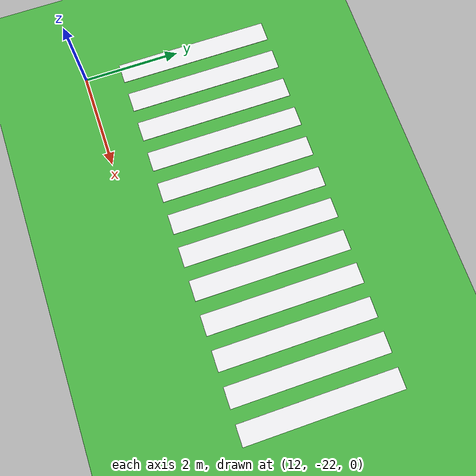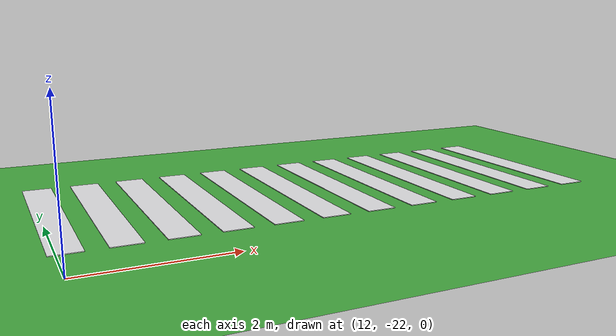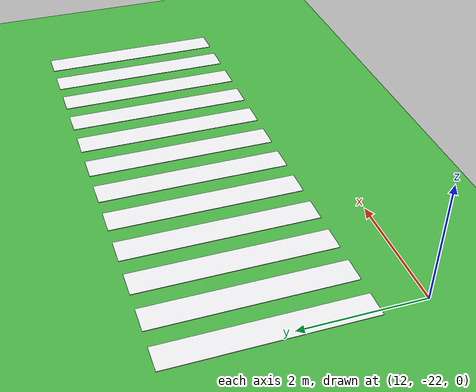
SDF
<sdf version="1.10">
 <world name="city_second">
  <model name="ground_plane">
   <static>true</static>
   <link name="link">
    <collision name="collision">
     <geometry><plane><normal>0 0 1</normal><size>45 46</size></plane></geometry>
    </collision>
    <visual name="visual">
     <geometry><plane><normal>0 0 1</normal><size>45 46</size></plane></geometry>
     <material>
      <ambient>0.280000001 0.689999998 0.25999999 1</ambient>
      <diffuse>0.280000001 0.689999998 0.25999999 1</diffuse>
      <specular>0.0299999993 0.0299999993 0.0299999993 1</specular>
     </material>
    </visual>
    <inertial>
     <mass>1</mass>
     <inertia><ixx>1</ixx><ixy>0</ixy><ixz>0</ixz><iyy>1</iyy><iyz>0</iyz><izz>1</izz></inertia>
    </inertial>
   </link>
   <pose>15.5 -11 0 0 0 0</pose>
  </model>
  <model name="crosswalk_h_1_1_south_7_2">
   <static>true</static>
   <pose>15.9618 -19.652999999999999 0.017000000000000001 0 0 0</pose>
   <link name="stripe_1">
    <collision name="collision">
     <geometry><box><size>0.41999999999999998 3.2000000000000002 0.01</size></box></geometry>
    </collision>
    <visual name="visual">
     <geometry><box><size>0.41999999999999998 3.2000000000000002 0.01</size></box></geometry>
     <material>
      <ambient>0.920000017 0.920000017 0.930000007 1</ambient>
      <diffuse>0.920000017 0.920000017 0.930000007 1</diffuse>
      <specular>0.0299999993 0.0299999993 0.0299999993 1</specular>
     </material>
    </visual>
    <pose>-3.8500000000000001 0 0 0 0 0</pose>
    <inertial>
     <mass>1</mass>
     <inertia><ixx>1</ixx><ixy>0</ixy><ixz>0</ixz><iyy>1</iyy><iyz>0</iyz><izz>1</izz></inertia>
    </inertial>
   </link>
   <link name="stripe_2">
    <collision name="collision">
     <geometry><box><size>0.41999999999999998 3.2000000000000002 0.01</size></box></geometry>
    </collision>
    <visual name="visual">
     <geometry><box><size>0.41999999999999998 3.2000000000000002 0.01</size></box></geometry>
     <material>
      <ambient>0.920000017 0.920000017 0.930000007 1</ambient>
      <diffuse>0.920000017 0.920000017 0.930000007 1</diffuse>
      <specular>0.0299999993 0.0299999993 0.0299999993 1</specular>
     </material>
    </visual>
    <pose>-3.1500000000000004 0 0 0 0 0</pose>
    <inertial>
     <mass>1</mass>
     <inertia><ixx>1</ixx><ixy>0</ixy><ixz>0</ixz><iyy>1</iyy><iyz>0</iyz><izz>1</izz></inertia>
    </inertial>
   </link>
   <link name="stripe_3">
    <collision name="collision">
     <geometry><box><size>0.41999999999999998 3.2000000000000002 0.01</size></box></geometry>
    </collision>
    <visual name="visual">
     <geometry><box><size>0.41999999999999998 3.2000000000000002 0.01</size></box></geometry>
     <material>
      <ambient>0.920000017 0.920000017 0.930000007 1</ambient>
      <diffuse>0.920000017 0.920000017 0.930000007 1</diffuse>
      <specular>0.0299999993 0.0299999993 0.0299999993 1</specular>
     </material>
    </visual>
    <pose>-2.4499999999999993 0 0 0 0 0</pose>
    <inertial>
     <mass>1</mass>
     <inertia><ixx>1</ixx><ixy>0</ixy><ixz>0</ixz><iyy>1</iyy><iyz>0</iyz><izz>1</izz></inertia>
    </inertial>
   </link>
   <link name="stripe_4">
    <collision name="collision">
     <geometry><box><size>0.41999999999999998 3.2000000000000002 0.01</size></box></geometry>
    </collision>
    <visual name="visual">
     <geometry><box><size>0.41999999999999998 3.2000000000000002 0.01</size></box></geometry>
     <material>
      <ambient>0.920000017 0.920000017 0.930000007 1</ambient>
      <diffuse>0.920000017 0.920000017 0.930000007 1</diffuse>
      <specular>0.0299999993 0.0299999993 0.0299999993 1</specular>
     </material>
    </visual>
    <pose>-1.75 0 0 0 0 0</pose>
    <inertial>
     <mass>1</mass>
     <inertia><ixx>1</ixx><ixy>0</ixy><ixz>0</ixz><iyy>1</iyy><iyz>0</iyz><izz>1</izz></inertia>
    </inertial>
   </link>
   <link name="stripe_5">
    <collision name="collision">
     <geometry><box><size>0.41999999999999998 3.2000000000000002 0.01</size></box></geometry>
    </collision>
    <visual name="visual">
     <geometry><box><size>0.41999999999999998 3.2000000000000002 0.01</size></box></geometry>
     <material>
      <ambient>0.920000017 0.920000017 0.930000007 1</ambient>
      <diffuse>0.920000017 0.920000017 0.930000007 1</diffuse>
      <specular>0.0299999993 0.0299999993 0.0299999993 1</specular>
     </material>
    </visual>
    <pose>-1.0500000000000007 0 0 0 0 0</pose>
    <inertial>
     <mass>1</mass>
     <inertia><ixx>1</ixx><ixy>0</ixy><ixz>0</ixz><iyy>1</iyy><iyz>0</iyz><izz>1</izz></inertia>
    </inertial>
   </link>
   <link name="stripe_6">
    <collision name="collision">
     <geometry><box><size>0.41999999999999998 3.2000000000000002 0.01</size></box></geometry>
    </collision>
    <visual name="visual">
     <geometry><box><size>0.41999999999999998 3.2000000000000002 0.01</size></box></geometry>
     <material>
      <ambient>0.920000017 0.920000017 0.930000007 1</ambient>
      <diffuse>0.920000017 0.920000017 0.930000007 1</diffuse>
      <specular>0.0299999993 0.0299999993 0.0299999993 1</specular>
     </material>
    </visual>
    <pose>-0.34999999999999964 0 0 0 0 0</pose>
    <inertial>
     <mass>1</mass>
     <inertia><ixx>1</ixx><ixy>0</ixy><ixz>0</ixz><iyy>1</iyy><iyz>0</iyz><izz>1</izz></inertia>
    </inertial>
   </link>
   <link name="stripe_7">
    <collision name="collision">
     <geometry><box><size>0.41999999999999998 3.2000000000000002 0.01</size></box></geometry>
    </collision>
    <visual name="visual">
     <geometry><box><size>0.41999999999999998 3.2000000000000002 0.01</size></box></geometry>
     <material>
      <ambient>0.920000017 0.920000017 0.930000007 1</ambient>
      <diffuse>0.920000017 0.920000017 0.930000007 1</diffuse>
      <specular>0.0299999993 0.0299999993 0.0299999993 1</specular>
     </material>
    </visual>
    <pose>0.35000000000000142 0 0 0 0 0</pose>
    <inertial>
     <mass>1</mass>
     <inertia><ixx>1</ixx><ixy>0</ixy><ixz>0</ixz><iyy>1</iyy><iyz>0</iyz><izz>1</izz></inertia>
    </inertial>
   </link>
   <link name="stripe_8">
    <collision name="collision">
     <geometry><box><size>0.41999999999999998 3.2000000000000002 0.01</size></box></geometry>
    </collision>
    <visual name="visual">
     <geometry><box><size>0.41999999999999998 3.2000000000000002 0.01</size></box></geometry>
     <material>
      <ambient>0.920000017 0.920000017 0.930000007 1</ambient>
      <diffuse>0.920000017 0.920000017 0.930000007 1</diffuse>
      <specular>0.0299999993 0.0299999993 0.0299999993 1</specular>
     </material>
    </visual>
    <pose>1.0500000000000007 0 0 0 0 0</pose>
    <inertial>
     <mass>1</mass>
     <inertia><ixx>1</ixx><ixy>0</ixy><ixz>0</ixz><iyy>1</iyy><iyz>0</iyz><izz>1</izz></inertia>
    </inertial>
   </link>
   <link name="stripe_9">
    <collision name="collision">
     <geometry><box><size>0.41999999999999998 3.2000000000000002 0.01</size></box></geometry>
    </collision>
    <visual name="visual">
     <geometry><box><size>0.41999999999999998 3.2000000000000002 0.01</size></box></geometry>
     <material>
      <ambient>0.920000017 0.920000017 0.930000007 1</ambient>
      <diffuse>0.920000017 0.920000017 0.930000007 1</diffuse>
      <specular>0.0299999993 0.0299999993 0.0299999993 1</specular>
     </material>
    </visual>
    <pose>1.75 0 0 0 0 0</pose>
    <inertial>
     <mass>1</mass>
     <inertia><ixx>1</ixx><ixy>0</ixy><ixz>0</ixz><iyy>1</iyy><iyz>0</iyz><izz>1</izz></inertia>
    </inertial>
   </link>
   <link name="stripe_10">
    <collision name="collision">
     <geometry><box><size>0.41999999999999998 3.2000000000000002 0.01</size></box></geometry>
    </collision>
    <visual name="visual">
     <geometry><box><size>0.41999999999999998 3.2000000000000002 0.01</size></box></geometry>
     <material>
      <ambient>0.920000017 0.920000017 0.930000007 1</ambient>
      <diffuse>0.920000017 0.920000017 0.930000007 1</diffuse>
      <specular>0.0299999993 0.0299999993 0.0299999993 1</specular>
     </material>
    </visual>
    <pose>2.4499999999999993 0 0 0 0 0</pose>
    <inertial>
     <mass>1</mass>
     <inertia><ixx>1</ixx><ixy>0</ixy><ixz>0</ixz><iyy>1</iyy><iyz>0</iyz><izz>1</izz></inertia>
    </inertial>
   </link>
   <link name="stripe_11">
    <collision name="collision">
     <geometry><box><size>0.41999999999999998 3.2000000000000002 0.01</size></box></geometry>
    </collision>
    <visual name="visual">
     <geometry><box><size>0.41999999999999998 3.2000000000000002 0.01</size></box></geometry>
     <material>
      <ambient>0.920000017 0.920000017 0.930000007 1</ambient>
      <diffuse>0.920000017 0.920000017 0.930000007 1</diffuse>
      <specular>0.0299999993 0.0299999993 0.0299999993 1</specular>
     </material>
    </visual>
    <pose>3.1499999999999986 0 0 0 0 0</pose>
    <inertial>
     <mass>1</mass>
     <inertia><ixx>1</ixx><ixy>0</ixy><ixz>0</ixz><iyy>1</iyy><iyz>0</iyz><izz>1</izz></inertia>
    </inertial>
   </link>
   <link name="stripe_12">
    <collision name="collision">
     <geometry><box><size>0.41999999999999998 3.2000000000000002 0.01</size></box></geometry>
    </collision>
    <visual name="visual">
     <geometry><box><size>0.41999999999999998 3.2000000000000002 0.01</size></box></geometry>
     <material>
      <ambient>0.920000017 0.920000017 0.930000007 1</ambient>
      <diffuse>0.920000017 0.920000017 0.930000007 1</diffuse>
      <specular>0.0299999993 0.0299999993 0.0299999993 1</specular>
     </material>
    </visual>
    <pose>3.8500000000000014 0 0 0 0 0</pose>
    <inertial>
     <mass>1</mass>
     <inertia><ixx>1</ixx><ixy>0</ixy><ixz>0</ixz><iyy>1</iyy><iyz>0</iyz><izz>1</izz></inertia>
    </inertial>
   </link>
  </model>
 </world>
</sdf>
